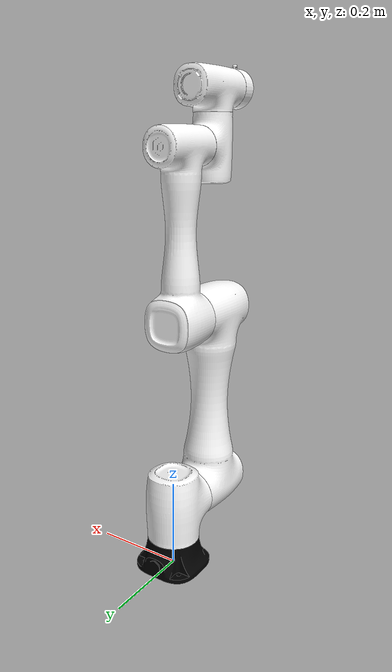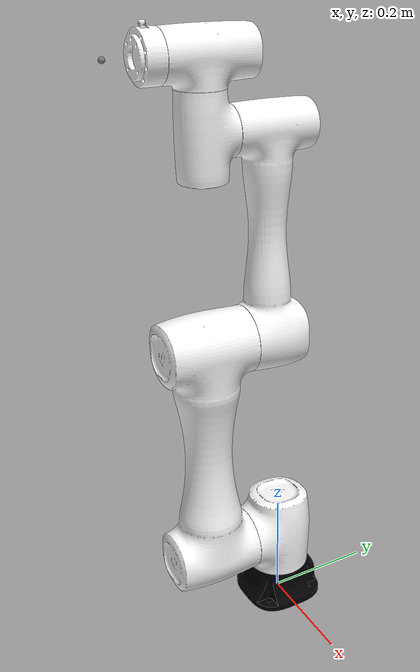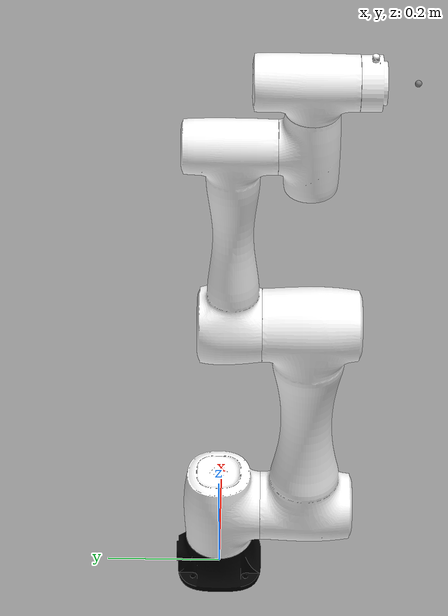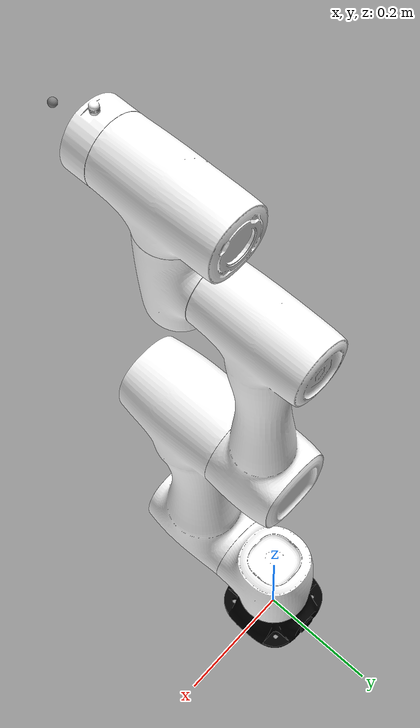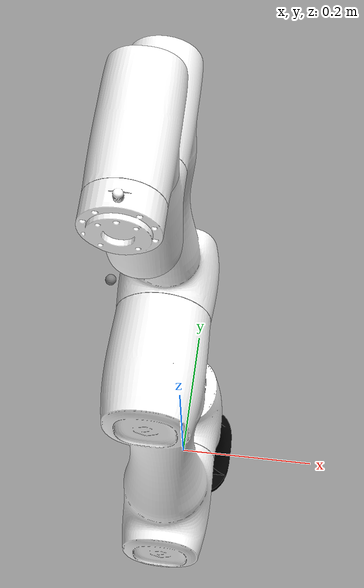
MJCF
<mujoco model="cr5_robot">
    <compiler angle="radian" />
    <size njmax="500" nconmax="100" />
    <asset>
        <mesh name="base_link" file="base_link.stl" />
        <mesh name="Link1" file="Link1.stl" />
        <mesh name="Link2" file="Link2.stl" />
        <mesh name="Link3" file="Link3.stl" />
        <mesh name="Link4" file="Link4.stl" />
        <mesh name="Link5" file="Link5.stl" />
        <mesh name="Link6" file="Link6.stl" />
    </asset>
    <worldbody>
        <geom type="mesh" rgba="0 0 0 1" mesh="base_link" />
        <body name="Link1" pos="0 0 0.147">
            <inertial pos="-8.7268e-07 -0.0032576 -0.0076748" quat="0.615786 0.347596 -0.347595 0.615761" mass="1.6123" diaginertia="0.00354972 0.0029122 0.00255298" />
            <joint name="joint1" pos="0 0 0" axis="0 0 1" limited="true" range="-3.14 3.14" />
            <geom type="mesh" rgba="1 1 1 1" mesh="Link1" />
            <body name="Link2" pos="0 0 0" quat="0.499998 0.5 0.5 -0.500002">
                <inertial pos="-0.21351 -1.3842e-06 0.14252" quat="8.38738e-05 0.707093 5.56955e-05 0.707121" mass="5.5186" diaginertia="0.028294 0.027553 0.0085919" />
                <joint name="joint2" pos="0 0 0" axis="0 0 1" limited="true" range="-3.14 3.14" />
                <geom type="mesh" rgba="1 1 1 1" mesh="Link2" />
                <body name="Link3" pos="-0.427 0 0">
                    <inertial pos="-0.15231 -1.4079e-07 0.022693" quat="0 0.714013 0 0.700132" mass="2.8536" diaginertia="0.00955763 0.0092967 0.00325837" />
                    <joint name="joint3" pos="0 0 0" axis="0 0 1" limited="true" range="-2.86 2.86" />
                    <geom type="mesh" rgba="1 1 1 1" mesh="Link3" />
                    <body name="Link4" pos="-0.357 0 0.141" quat="0.707105 0 0 -0.707108">
                        <inertial pos="-3.2386e-07 -0.002077 -0.0015548" quat="0.653428 0.270173 -0.270153 0.653495" mass="0.67058" diaginertia="0.000764755 0.00066939 0.000543135" />
                        <joint name="joint4" pos="0 0 0" axis="0 0 1" limited="true" range="-3.14 3.14" />
                        <geom type="mesh" rgba="1 1 1 1" mesh="Link4" />
                        <body name="Link5" pos="0 -0.116 0" quat="0.707105 0.707108 0 0">
                            <inertial pos="-3.7738e-07 -0.0045777 -0.0012971" quat="0.27195 0.652753 -0.652695 0.271929" mass="0.7269" diaginertia="0.000832194 0.00073069 0.000593666" />
                            <joint name="joint5" pos="0 0 0" axis="0 0 1" limited="true" range="-3.14 3.14" />
                            <geom type="mesh" rgba="1 1 1 1" mesh="Link5" />
                            <body name="Link6" pos="0 0.105 0" quat="0.707105 -0.707108 0 0">
                                <inertial pos="5.0777e-11 9.3774e-05 -0.019285" quat="-0.000970713 0.707106 -0.000970713 0.707106" mass="0.15789" diaginertia="0.00012951 7.91676e-05 7.8045e-05" />
                                <joint name="joint6" pos="0 0 0" axis="0 0 1" limited="true" range="-6.28 6.28" />
                                <geom type="mesh" rgba="1 1 1 1" mesh="Link6" />
                                <site pos="0 0 0.045" name="attachment_site"/>
                            </body>
                        </body>
                    </body>
                </body>
            </body>
        </body>
    </worldbody>

    <default>
    <default class="ur5e">
        <default class="visual">
            <geom type="mesh" contype="0" conaffinity="0" group="2"/>
        </default>
        <default class="collision">
            <geom type="capsule" group="3"/>
            <default class="eef_collision">
            <geom type="cylinder"/>
            </default>
        </default>
        <joint axis="0 1 0" range="-6.28319 6.28319"/>
        <default class="joint_limited">
            <joint range="-3.1415 3.1415"/>
        </default>
        <default class="position">
            <default class="position_1245">
            <position ctrlrange="-3.1415 3.1415" kp="2000" kv="100" forcerange="-1000 1000"/>
            </default>
            <default class="position_3">
            <position ctrlrange="-2.86 2.86" kp="2000" kv="100" forcerange="-1000 1000"/>
            </default>
        </default>
    </default>
    </default>
    <actuator>
        <position class="position_1245" name="joint1" joint="joint1"/>
        <position class="position_1245" name="joint2" joint="joint2"/>
        <position class="position_1245" name="joint3" joint="joint3"/>
        <position class="position_1245" name="joint4" joint="joint4"/>
        <position class="position_1245" name="joint5" joint="joint5"/>
        <motor name="joint6" joint="joint6" ctrlrange="-6.28 6.28" forcerange="-75 75"/>
    </actuator>

    <keyframe>
        <key name="home" qpos="0 0 0 0 0 0" ctrl="0 0 0 0 0 0"/>
    </keyframe>

</mujoco>
